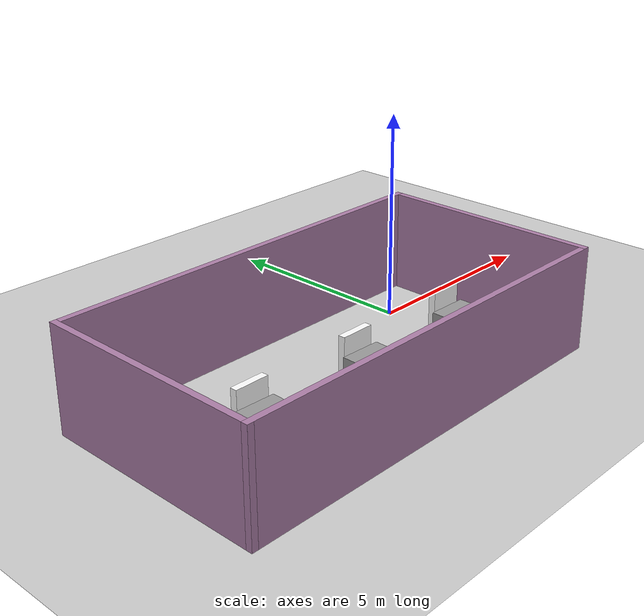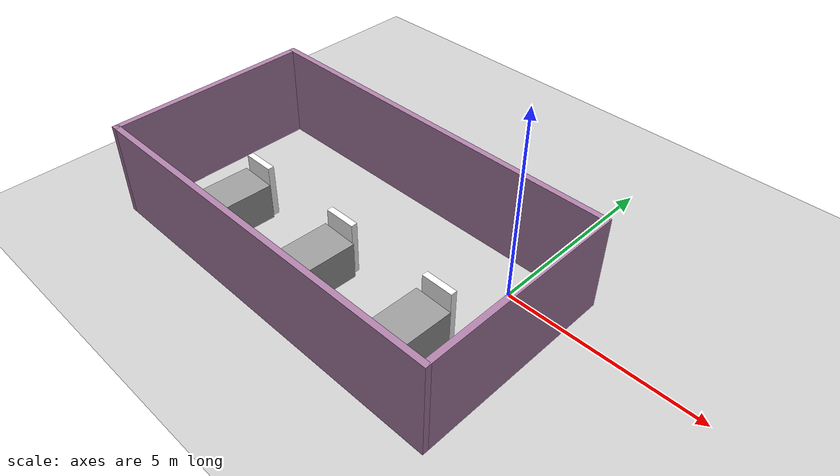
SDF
<?xml version="1.0" ?>
<sdf version="1.7">
  <world name="default">

    <!-- A global light source -->
    <include>
      <uri>model://sun</uri>
    </include>

    <!-- A ground plane -->
    <include>
      <uri>model://ground_plane</uri>
    </include>

    <include>
      <uri>model://all_supermarket_models/purple_wall</uri>
    </include>

    <include>
      <uri>model://all_supermarket_models/left_box</uri>
    </include>

    <include>
      <uri>model://all_supermarket_models/middle_box</uri>
    </include>

    <include>
      <uri>model://all_supermarket_models/right_box</uri>
    </include>

    <!-- Add Milk Wall -->
    <model name='qr_wall_MILK'>
      <pose frame=''>0 -2 -0.5 0 -0 1.57</pose>
      <static>1</static>
      <link name='body'>
        <inertial>
          <mass>1</mass>
          <inertia>
            <ixx>0.166667</ixx>
            <ixy>0</ixy>
            <ixz>0</ixz>
            <iyy>0.166667</iyy>
            <iyz>0</iyz>
            <izz>0.166667</izz>
          </inertia>
        </inertial>
        <collision name='collision'>
          <geometry>
            <box>
              <size>0.1 0.1 0.1</size>
            </box>
          </geometry>
          <max_contacts>10</max_contacts>
          <surface>
            <contact>
              <ode/>
            </contact>
            <bounce/>
            <friction>
              <torsional>
                <ode/>
              </torsional>
              <ode/>
            </friction>
          </surface>
        </collision>
        <visual name='visual'>
          <geometry>
            <mesh>
              <uri>model://all_supermarket_models/qr_wall_milk/meshes/qr_wall.dae</uri>
            </mesh>
          </geometry>
        </visual>
        <self_collide>0</self_collide>
        <enable_wind>0</enable_wind>
        <kinematic>0</kinematic>
      </link>
    </model>

    <model name='qr_wall_FRIUT'>
      <pose frame=''>-3 -2 -0.5 0 -0 1.57</pose>
      <static>1</static>
      <link name='body'>
        <inertial>
          <mass>1</mass>
          <inertia>
            <ixx>0.166667</ixx>
            <ixy>0</ixy>
            <ixz>0</ixz>
            <iyy>0.166667</iyy>
            <iyz>0</iyz>
            <izz>0.166667</izz>
          </inertia>
        </inertial>
        <collision name='collision'>
          <geometry>
            <box>
              <size>0.1 0.1 0.1</size>
            </box>
          </geometry>
          <max_contacts>10</max_contacts>
          <surface>
            <contact>
              <ode/>
            </contact>
            <bounce/>
            <friction>
              <torsional>
                <ode/>
              </torsional>
              <ode/>
            </friction>
          </surface>
        </collision>
        <visual name='visual'>
          <geometry>
            <mesh>
              <uri>model://all_supermarket_models/qr_wall_fruit/meshes/qr_wall.dae</uri>
            </mesh>
          </geometry>
        </visual>
        <self_collide>0</self_collide>
        <enable_wind>0</enable_wind>
        <kinematic>0</kinematic>
      </link>
    </model>

    <model name='qr_wall_SNACK'>
      <pose frame=''>-6 -2 -0.5 0 -0 1.57</pose>
      <static>1</static>
      <link name='body'>
        <inertial>
          <mass>1</mass>
          <inertia>
            <ixx>0.166667</ixx>
            <ixy>0</ixy>
            <ixz>0</ixz>
            <iyy>0.166667</iyy>
            <iyz>0</iyz>
            <izz>0.166667</izz>
          </inertia>
        </inertial>
        <collision name='collision'>
          <geometry>
            <box>
              <size>0.1 0.1 0.1</size>
            </box>
          </geometry>
          <max_contacts>10</max_contacts>
          <surface>
            <contact>
              <ode/>
            </contact>
            <bounce/>
            <friction>
              <torsional>
                <ode/>
              </torsional>
              <ode/>
            </friction>
          </surface>
        </collision>
        <visual name='visual'>
          <geometry>
            <mesh>
              <uri>model://all_supermarket_models/qr_wall_snack/meshes/qr_wall.dae</uri>
            </mesh>
          </geometry>
        </visual>
        <self_collide>0</self_collide>
        <enable_wind>0</enable_wind>
        <kinematic>0</kinematic>
      </link>
    </model>

    <physics type="ode">
      <real_time_update_rate>1000.0</real_time_update_rate>
      <max_step_size>0.001</max_step_size>
      <real_time_factor>1</real_time_factor>
      <ode>
        <solver>
          <type>quick</type>
          <iters>150</iters>
          <precon_iters>0</precon_iters>
          <sor>1.400000</sor>
          <use_dynamic_moi_rescaling>1</use_dynamic_moi_rescaling>
        </solver>
        <constraints>
          <cfm>0.00001</cfm>
          <erp>0.2</erp>
          <contact_max_correcting_vel>2000.000000</contact_max_correcting_vel>
          <contact_surface_layer>0.01000</contact_surface_layer>
        </constraints>
      </ode>
    </physics>

    <scene>
      <ambient>0.4 0.4 0.4 1</ambient>
      <background>0.7 0.7 0.7 1</background>
      <shadows>true</shadows>
    </scene>

    <gui fullscreen='0'>
      <camera name='user_camera'>
        <pose>0.8 0.0 12.0 0 1.5708 0</pose>
        <view_controller>orbit</view_controller>
      </camera>
    </gui>
  </world>
</sdf>

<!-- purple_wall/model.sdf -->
<sdf version='1.7'>
  <model name='purple_wall'>
    <pose>-3.58716 -1.64705 0 0 -0 0</pose>
    <link name='Wall_28'>
      <collision name='Wall_28_Collision'>
        <geometry>
          <box>
            <size>10.25 0.15 2.5</size>
          </box>
        </geometry>
        <pose>0 0 1.25 0 -0 0</pose>
      </collision>
      <visual name='Wall_28_Visual'>
        <pose>0 0 1.25 0 -0 0</pose>
        <geometry>
          <box>
            <size>10.25 0.15 2.5</size>
          </box>
        </geometry>
        <material>
          <script>
            <uri>file://media/materials/scripts/gazebo.material</uri>
            <name>Gazebo/Grey</name>
          </script>
          <ambient>0.678431 0.498039 0.658824 1</ambient>
        </material>
        <meta>
          <layer>0</layer>
        </meta>
      </visual>
      <pose>0 -2.675 0 0 -0 3.14159</pose>
    </link>
    <link name='Wall_29'>
      <collision name='Wall_29_Collision'>
        <geometry>
          <box>
            <size>5.5 0.15 2.5</size>
          </box>
        </geometry>
        <pose>0 0 1.25 0 -0 0</pose>
      </collision>
      <visual name='Wall_29_Visual'>
        <pose>0 0 1.25 0 -0 0</pose>
        <geometry>
          <box>
            <size>5.5 0.15 2.5</size>
          </box>
        </geometry>
        <material>
          <script>
            <uri>file://media/materials/scripts/gazebo.material</uri>
            <name>Gazebo/Grey</name>
          </script>
          <ambient>0.678431 0.498039 0.658824 1</ambient>
        </material>
        <meta>
          <layer>0</layer>
        </meta>
      </visual>
      <pose>-5.05 -0 0 0 -0 1.5708</pose>
    </link>
    <link name='Wall_31'>
      <collision name='Wall_31_Collision'>
        <geometry>
          <box>
            <size>10.25 0.15 2.5</size>
          </box>
        </geometry>
        <pose>0 0 1.25 0 -0 0</pose>
      </collision>
      <visual name='Wall_31_Visual'>
        <pose>0 0 1.25 0 -0 0</pose>
        <geometry>
          <box>
            <size>10.25 0.15 2.5</size>
          </box>
        </geometry>
        <material>
          <script>
            <uri>file://media/materials/scripts/gazebo.material</uri>
            <name>Gazebo/Grey</name>
          </script>
          <ambient>0.678431 0.498039 0.658824 1</ambient>
        </material>
        <meta>
          <layer>0</layer>
        </meta>
      </visual>
      <pose>0 2.675 0 0 -0 0</pose>
    </link>
    <link name='Wall_32'>
      <collision name='Wall_32_Collision'>
        <geometry>
          <box>
            <size>5.5 0.15 2.5</size>
          </box>
        </geometry>
        <pose>0 0 1.25 0 -0 0</pose>
      </collision>
      <visual name='Wall_32_Visual'>
        <pose>0 0 1.25 0 -0 0</pose>
        <geometry>
          <box>
            <size>5.5 0.15 2.5</size>
          </box>
        </geometry>
        <material>
          <script>
            <uri>file://media/materials/scripts/gazebo.material</uri>
            <name>Gazebo/Grey</name>
          </script>
          <ambient>0.678431 0.498039 0.658824 1</ambient>
        </material>
        <meta>
          <layer>0</layer>
        </meta>
      </visual>
      <pose>5.05 -0 0 0 -0 -1.5708</pose>
    </link>
    <static>1</static>
  </model>
</sdf>

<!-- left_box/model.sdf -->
<sdf version='1.7'>
  <model name='left_box'>
    <pose>-0.466399 -3.214254 0.5 0.000034 0 -0.023895</pose>
    <link name='link'>
      <inertial>
        <mass>1</mass>
        <inertia>
          <ixx>0.166667</ixx>
          <ixy>0</ixy>
          <ixz>0</ixz>
          <iyy>0.166667</iyy>
          <iyz>0</iyz>
          <izz>0.166667</izz>
        </inertia>
        <pose>0 0 0 0 -0 0</pose>
      </inertial>
      <self_collide>0</self_collide>
      <enable_wind>0</enable_wind>
      <kinematic>0</kinematic>
      <pose>0 0 0 0 -0 0</pose>
      <visual name='visual'>
        <geometry>
          <box>
            <size>1 2.32314 1</size>
          </box>
        </geometry>
        <material>
          <script>
            <name>Gazebo/Grey</name>
            <uri>file://media/materials/scripts/gazebo.material</uri>
          </script>
          <shader type='pixel'/>
        </material>
        <pose>0 0 0 0 -0 0</pose>
        <transparency>0</transparency>
        <cast_shadows>1</cast_shadows>
      </visual>
      <collision name='collision'>
        <laser_retro>0</laser_retro>
        <max_contacts>10</max_contacts>
        <pose>0 0 0 0 -0 0</pose>
        <geometry>
          <box>
            <size>1 2.32314 1</size>
          </box>
        </geometry>
        <surface>
          <friction>
            <ode>
              <mu>1</mu>
              <mu2>1</mu2>
              <fdir1>0 0 0</fdir1>
              <slip1>0</slip1>
              <slip2>0</slip2>
            </ode>
            <torsional>
              <coefficient>1</coefficient>
              <patch_radius>0</patch_radius>
              <surface_radius>0</surface_radius>
              <use_patch_radius>1</use_patch_radius>
              <ode>
                <slip>0</slip>
              </ode>
            </torsional>
          </friction>
          <bounce>
            <restitution_coefficient>0</restitution_coefficient>
            <threshold>1e+06</threshold>
          </bounce>
          <contact>
            <collide_without_contact>0</collide_without_contact>
            <collide_without_contact_bitmask>1</collide_without_contact_bitmask>
            <collide_bitmask>1</collide_bitmask>
            <ode>
              <soft_cfm>0</soft_cfm>
              <soft_erp>0.2</soft_erp>
              <kp>1e+13</kp>
              <kd>1</kd>
              <max_vel>0.01</max_vel>
              <min_depth>0</min_depth>
            </ode>
            <bullet>
              <split_impulse>1</split_impulse>
              <split_impulse_penetration_threshold>-0.01</split_impulse_penetration_threshold>
              <soft_cfm>0</soft_cfm>
              <soft_erp>0.2</soft_erp>
              <kp>1e+13</kp>
              <kd>1</kd>
            </bullet>
          </contact>
        </surface>
      </collision>
    </link>
    <static>0</static>
    <allow_auto_disable>1</allow_auto_disable>
  </model>
</sdf>

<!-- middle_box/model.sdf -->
<sdf version='1.7'>
  <model name='middle_box'>
    <pose>-3.424777 -3.201863 0.5 0 0 -0.032863</pose>
    <link name='link'>
      <inertial>
        <mass>1</mass>
        <inertia>
          <ixx>0.166667</ixx>
          <ixy>0</ixy>
          <ixz>0</ixz>
          <iyy>0.166667</iyy>
          <iyz>0</iyz>
          <izz>0.166667</izz>
        </inertia>
        <pose>0 0 0 0 -0 0</pose>
      </inertial>
      <self_collide>0</self_collide>
      <enable_wind>0</enable_wind>
      <kinematic>0</kinematic>
      <pose>0 0 0 0 -0 0</pose>
      <visual name='visual'>
        <geometry>
          <box>
            <size>1 2.32314 1</size>
          </box>
        </geometry>
        <material>
          <script>
            <name>Gazebo/Grey</name>
            <uri>file://media/materials/scripts/gazebo.material</uri>
          </script>
          <shader type='pixel'/>
        </material>
        <pose>0 0 0 0 -0 0</pose>
        <transparency>0</transparency>
        <cast_shadows>1</cast_shadows>
      </visual>
      <collision name='collision'>
        <laser_retro>0</laser_retro>
        <max_contacts>10</max_contacts>
        <pose>0 0 0 0 -0 0</pose>
        <geometry>
          <box>
            <size>1 2.32314 1</size>
          </box>
        </geometry>
        <surface>
          <friction>
            <ode>
              <mu>1</mu>
              <mu2>1</mu2>
              <fdir1>0 0 0</fdir1>
              <slip1>0</slip1>
              <slip2>0</slip2>
            </ode>
            <torsional>
              <coefficient>1</coefficient>
              <patch_radius>0</patch_radius>
              <surface_radius>0</surface_radius>
              <use_patch_radius>1</use_patch_radius>
              <ode>
                <slip>0</slip>
              </ode>
            </torsional>
          </friction>
          <bounce>
            <restitution_coefficient>0</restitution_coefficient>
            <threshold>1e+06</threshold>
          </bounce>
          <contact>
            <collide_without_contact>0</collide_without_contact>
            <collide_without_contact_bitmask>1</collide_without_contact_bitmask>
            <collide_bitmask>1</collide_bitmask>
            <ode>
              <soft_cfm>0</soft_cfm>
              <soft_erp>0.2</soft_erp>
              <kp>1e+13</kp>
              <kd>1</kd>
              <max_vel>0.01</max_vel>
              <min_depth>0</min_depth>
            </ode>
            <bullet>
              <split_impulse>1</split_impulse>
              <split_impulse_penetration_threshold>-0.01</split_impulse_penetration_threshold>
              <soft_cfm>0</soft_cfm>
              <soft_erp>0.2</soft_erp>
              <kp>1e+13</kp>
              <kd>1</kd>
            </bullet>
          </contact>
        </surface>
      </collision>
    </link>
    <static>0</static>
    <allow_auto_disable>1</allow_auto_disable>
  </model>
</sdf>

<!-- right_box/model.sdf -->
<sdf version='1.7'>
  <model name='right_box'>
    <pose>-6.461199 -3.201863 0.5 0 0 -0.032863</pose>
    <link name='link'>
      <inertial>
        <mass>1</mass>
        <inertia>
          <ixx>0.166667</ixx>
          <ixy>0</ixy>
          <ixz>0</ixz>
          <iyy>0.166667</iyy>
          <iyz>0</iyz>
          <izz>0.166667</izz>
        </inertia>
        <pose>0 0 0 0 -0 0</pose>
      </inertial>
      <self_collide>0</self_collide>
      <enable_wind>0</enable_wind>
      <kinematic>0</kinematic>
      <pose>0 0 0 0 -0 0</pose>
      <visual name='visual'>
        <geometry>
          <box>
            <size>1 2.32314 1</size>
          </box>
        </geometry>
        <material>
          <script>
            <name>Gazebo/Grey</name>
            <uri>file://media/materials/scripts/gazebo.material</uri>
          </script>
          <shader type='pixel'/>
        </material>
        <pose>0 0 0 0 -0 0</pose>
        <transparency>0</transparency>
        <cast_shadows>1</cast_shadows>
      </visual>
      <collision name='collision'>
        <laser_retro>0</laser_retro>
        <max_contacts>10</max_contacts>
        <pose>0 0 0 0 -0 0</pose>
        <geometry>
          <box>
            <size>1 2.32314 1</size>
          </box>
        </geometry>
        <surface>
          <friction>
            <ode>
              <mu>1</mu>
              <mu2>1</mu2>
              <fdir1>0 0 0</fdir1>
              <slip1>0</slip1>
              <slip2>0</slip2>
            </ode>
            <torsional>
              <coefficient>1</coefficient>
              <patch_radius>0</patch_radius>
              <surface_radius>0</surface_radius>
              <use_patch_radius>1</use_patch_radius>
              <ode>
                <slip>0</slip>
              </ode>
            </torsional>
          </friction>
          <bounce>
            <restitution_coefficient>0</restitution_coefficient>
            <threshold>1e+06</threshold>
          </bounce>
          <contact>
            <collide_without_contact>0</collide_without_contact>
            <collide_without_contact_bitmask>1</collide_without_contact_bitmask>
            <collide_bitmask>1</collide_bitmask>
            <ode>
              <soft_cfm>0</soft_cfm>
              <soft_erp>0.2</soft_erp>
              <kp>1e+13</kp>
              <kd>1</kd>
              <max_vel>0.01</max_vel>
              <min_depth>0</min_depth>
            </ode>
            <bullet>
              <split_impulse>1</split_impulse>
              <split_impulse_penetration_threshold>-0.01</split_impulse_penetration_threshold>
              <soft_cfm>0</soft_cfm>
              <soft_erp>0.2</soft_erp>
              <kp>1e+13</kp>
              <kd>1</kd>
            </bullet>
          </contact>
        </surface>
      </collision>
    </link>
    <static>0</static>
    <allow_auto_disable>1</allow_auto_disable>
  </model>
</sdf>
